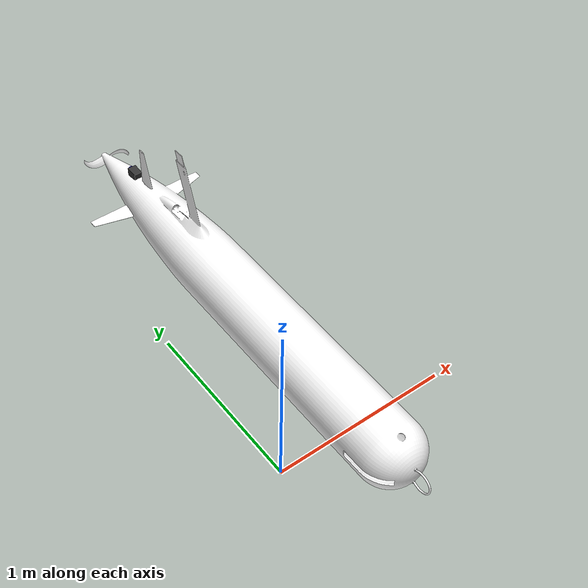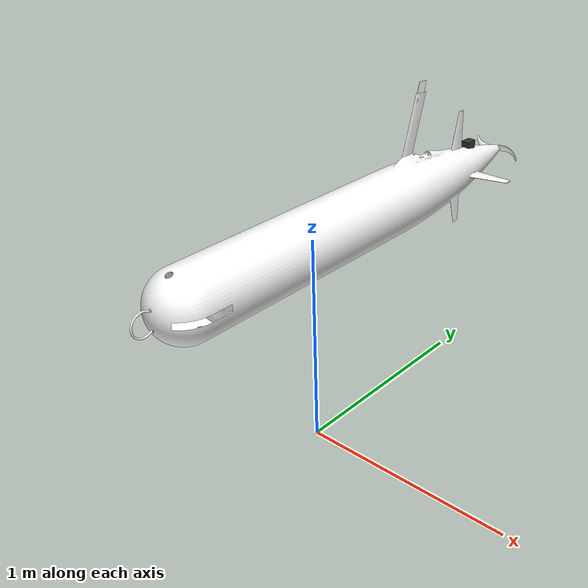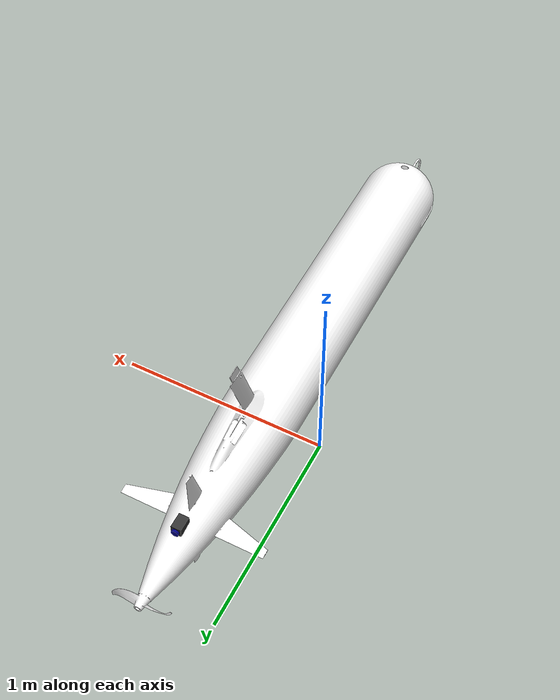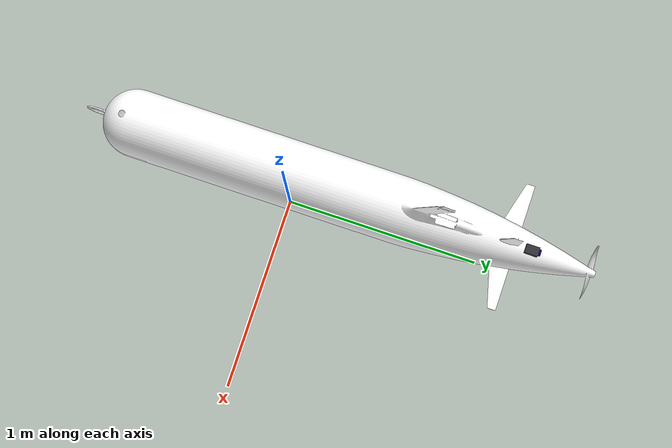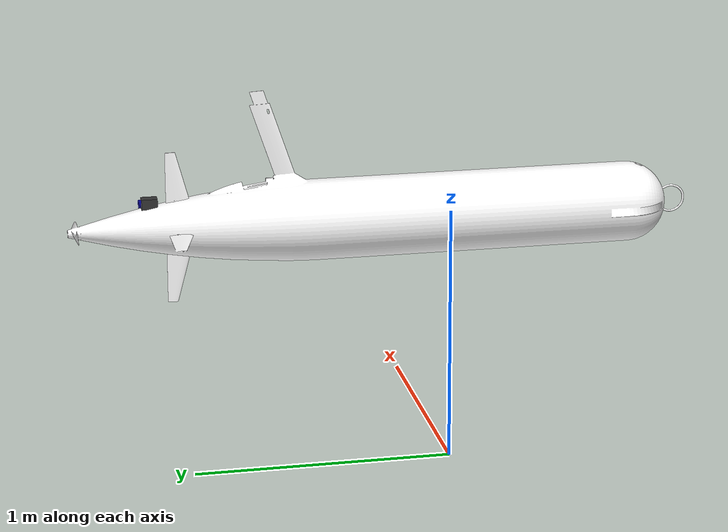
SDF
<sdf version="1.10">
 <world name="submarine_world">
  <scene>
   <ambient>0.2 0.3 0.4 1</ambient>
   <background>0 0.3 0.6 1</background>
   <shadows>true</shadows>
   <grid>false</grid>
   <fog>
    <color>0.0 0.2 0.4 1.0</color>
    <type>linear</type>
    <density>0.05</density>
    <start>1</start>
    <end>80</end>
   </fog>
  </scene>
  <physics name="1ms" type="ode">
   <max_step_size>0.001</max_step_size>
   <real_time_factor>1</real_time_factor>
   <real_time_update_rate>1000</real_time_update_rate>
  </physics>
  <plugin name="gz::sim::systems::Physics" filename="gz-sim-physics-system"/>
  <plugin name="gz::sim::systems::UserCommands" filename="gz-sim-user-commands-system"/>
  <plugin name="gz::sim::systems::SceneBroadcaster" filename="gz-sim-scene-broadcaster-system"/>
  <plugin name="gz::sim::systems::Contact" filename="gz-sim-contact-system"/>
  <plugin name="gz::sim::systems::Sensors" filename="libgz-sim8-sensors-system.so"/>
  <plugin name="gz::sim::systems::Buoyancy" filename="gz-sim-buoyancy-system">
   <uniform_fluid_density>1000</uniform_fluid_density>
  </plugin>
  <gravity>0 0 -9.8000000000000007</gravity>
  <magnetic_field>5.5644999999999998e-06 2.2875799999999999e-05 -4.2388400000000002e-05</magnetic_field>
  <atmosphere type="adiabatic"/>
  <include>
   <uri>model://submarine_model</uri>
   <name>tethys</name>
   <pose>0 0 1 0 0 1.5699999999999998</pose>
  </include>
  <light name="sun" type="directional">
   <pose>0 0 50 0 0 0</pose>
   <intensity>0.6</intensity>
   <direction>-0.5 0.1 -0.9</direction>
   <diffuse>0.6 0.8 0.95 1</diffuse>
   <specular>0.2 0.3 0.4 1</specular>
   <attenuation>
    <range>1000</range>
    <linear>0.03</linear>
    <constant>0.8</constant>
    <quadratic>0.001</quadratic>
   </attenuation>
   <spot><inner_angle>0</inner_angle><outer_angle>0</outer_angle><falloff>0</falloff></spot>
  </light>
 </world>
</sdf>

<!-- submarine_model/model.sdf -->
<sdf version="1.6">
	<model name="tethys">
		<!-- Body -->
		<link name="base_link">
			<inertial>
				<mass>147.8671</mass>
				<inertia>
					<ixx>3.000000</ixx>
					<ixy>0</ixy>
					<ixz>0</ixz>
					<iyy>41.980233</iyy>
					<iyz>0</iyz>
					<izz>41.980233</izz>
				</inertia>
			</inertial>
			<collision name="main_body_buoyancy">
				<geometry>
					<box>
						<size>2 0.3 0.2464451666666667</size>
					</box>
				</geometry>
			</collision>
			<visual name="visual">
				<geometry>
					<mesh>
						<uri>meshes/tethys.dae</uri>
						<submesh>
							<name>Body</name>
							<center>false</center>
						</submesh>
					</mesh>
				</geometry>
				<material>
					<diffuse>1.0 1.0 1.0</diffuse>
					<specular>1.0 1.0 1.0</specular>
					<pbr>
						<metal>
							<albedo_map>materials/textures/Tethys_Albedo.png</albedo_map>
							<normal_map>materials/textures/Tethys_Normal.png</normal_map>
							<metalness_map>materials/textures/Tethys_Metalness.png</metalness_map>
							<roughness_map>materials/textures/Tethys_Roughness.png</roughness_map>
						</metal>
					</pbr>
					<script>
						<uri>materials/scripts/</uri>
						<uri>materials/textures/</uri>
						<name>tethys/Tethys_Diffuse</name>
					</script>
				</material>
			</visual>
			<!-- Camera visual representation -->
			<visual name="camera_visual">
				<pose>1.15 0 0.1 0 0 0</pose>
				<geometry>
					<box>
						<size>0.06 0.04 0.04</size>
					</box>
				</geometry>
				<material>
					<ambient>0.1 0.1 0.1 1</ambient>
					<diffuse>0.2 0.2 0.2 1</diffuse>
					<specular>0.8 0.8 0.8 1</specular>
				</material>
			</visual>
			<!-- Camera lens visual -->
			<visual name="camera_lens_visual">
				<pose>1.18 0 0.1 0 1.5708 0</pose>
				<geometry>
					<cylinder>
						<radius>0.015</radius>
						<length>0.02</length>
					</cylinder>
				</geometry>
				<material>
					<ambient>0.0 0.0 0.2 1</ambient>
					<diffuse>0.0 0.0 0.5 1</diffuse>
					<specular>0.9 0.9 0.9 1</specular>
				</material>
			</visual>
			<!--CAMERA SENSOR-->
			<sensor name="camera_sensor" type="camera">
				<pose>1.15 0 0.15 0 0 0</pose>
				<camera name="forward_camera">
					<horizontal_fov>1.39626</horizontal_fov>
					<image>
						<width>640</width>
						<height>480</height>
						<format>R8G8B8</format>
					</image>
					<clip>
						<near>0.05</near>
						<far>300</far>
					</clip>
					<noise>
						<type>gaussian</type>
						<mean>0.0</mean>
						<stddev>0.007</stddev>
					</noise>
				</camera>
				<always_on>1</always_on>
				<update_rate>120</update_rate>
				<visualize>true</visualize>
				<topic>/camera/image_raw</topic>
			</sensor>
			<!-- IMU SENSOR -->
			<sensor name="imu_sensor" type="imu">
				<always_on>1</always_on>
				<update_rate>100</update_rate>
				<visualize>false</visualize>
				<topic>/imu/data</topic>
				<imu>
					<angular_velocity>
						<x>
							<noise type="gaussian">
								<mean>0.0</mean>
								<stddev>2e-4</stddev>
								<bias_mean>0.0000075</bias_mean>
								<bias_stddev>0.0000008</bias_stddev>
							</noise>
						</x>
						<y>
							<noise type="gaussian">
								<mean>0.0</mean>
								<stddev>2e-4</stddev>
								<bias_mean>0.0000075</bias_mean>
								<bias_stddev>0.0000008</bias_stddev>
							</noise>
						</y>
						<z>
							<noise type="gaussian">
								<mean>0.0</mean>
								<stddev>2e-4</stddev>
								<bias_mean>0.0000075</bias_mean>
								<bias_stddev>0.0000008</bias_stddev>
							</noise>
						</z>
					</angular_velocity>
					<linear_acceleration>
						<x>
							<noise type="gaussian">
								<mean>0.0</mean>
								<stddev>1.7e-2</stddev>
								<bias_mean>0.1</bias_mean>
								<bias_stddev>0.001</bias_stddev>
							</noise>
						</x>
						<y>
							<noise type="gaussian">
								<mean>0.0</mean>
								<stddev>1.7e-2</stddev>
								<bias_mean>0.1</bias_mean>
								<bias_stddev>0.001</bias_stddev>
							</noise>
						</y>
						<z>
							<noise type="gaussian">
								<mean>0.0</mean>
								<stddev>1.7e-2</stddev>
								<bias_mean>0.1</bias_mean>
								<bias_stddev>0.001</bias_stddev>
							</noise>
						</z>
					</linear_acceleration>
				</imu>
				<plugin filename="gz-sim-imu-system" name="gz::sim::systems::Imu">
					<initial_orientation_as_reference>false</initial_orientation_as_reference>
				</plugin>
				<pose>0 0 0 0 0 0</pose>
			</sensor>
		</link>
		<!-- Horizontal fins -->
		<link name="horizontal_fins">
			<pose>1.05 0 0 0 0 0</pose>
			<inertial>
				<pose>0 0 0 1.57 0 0.5</pose>
				<mass>0.2</mass>
				<inertia>
					<ixx>0.0007924568755</ixx>
					<ixy>-0.0000000002674</ixy>
					<ixz>0.0003978158176</ixz>
					<iyy>0.0010546736475</iyy>
					<iyz>-0.0000000006729</iyz>
					<izz>0.0002633558262</izz>
				</inertia>
			</inertial>
			<collision name="collision">
				<geometry>
					<box>
						<size>0.1 0.1 0.02</size>
					</box>
				</geometry>
			</collision>
			<visual name="visual">
				<pose>-1.05 0 0 0 0 0</pose>
				<geometry>
					<mesh>
						<uri>meshes/tethys.dae</uri>
						<submesh>
							<name>Fins_Horizontal</name>
							<center>false</center>
						</submesh>
					</mesh>
				</geometry>
				<material>
					<diffuse>1.0 1.0 1.0</diffuse>
					<specular>1.0 1.0 1.0</specular>
					<pbr>
						<metal>
							<albedo_map>materials/textures/Tethys_Albedo.png</albedo_map>
							<normal_map>materials/textures/Tethys_Normal.png</normal_map>
							<metalness_map>materials/textures/Tethys_Metalness.png</metalness_map>
							<roughness_map>materials/textures/Tethys_Roughness.png</roughness_map>
						</metal>
					</pbr>
					<script>
						<uri>materials/scripts/</uri>
						<uri>materials/textures/</uri>
						<name>tethys/Tethys_Diffuse</name>
					</script>
				</material>
			</visual>
		</link>
		<!-- Vertical fins -->
		<link name="vertical_fins">
			<pose>1.05 0 0 0 0 0</pose>
			<inertial>
				<mass>0.2</mass>
				<inertia>
					<ixx>0.0007924568755</ixx>
					<ixy>-0.0000000002674</ixy>
					<ixz>0.0003978158176</ixz>
					<iyy>0.0010546736475</iyy>
					<iyz>-0.0000000006729</iyz>
					<izz>0.0002633558262</izz>
				</inertia>
			</inertial>
			<collision name="collision">
				<geometry>
					<box>
						<size>0.1 0.1 0.02</size>
					</box>
				</geometry>
			</collision>
			<visual name="visual">
				<pose>-1.05 0 0 0 0 0</pose>
				<geometry>
					<mesh>
						<uri>meshes/tethys.dae</uri>
						<submesh>
							<name>Fins_vertical</name>
							<center>false</center>
						</submesh>
					</mesh>
				</geometry>
				<material>
					<diffuse>1.0 1.0 1.0</diffuse>
					<specular>1.0 1.0 1.0</specular>
					<pbr>
						<metal>
							<albedo_map>materials/textures/Tethys_Albedo.png</albedo_map>
							<normal_map>materials/textures/Tethys_Normal.png</normal_map>
							<metalness_map>materials/textures/Tethys_Metalness.png</metalness_map>
							<roughness_map>materials/textures/Tethys_Roughness.png</roughness_map>
						</metal>
					</pbr>
					<script>
						<uri>materials/scripts/</uri>
						<uri>materials/textures/</uri>
						<name>tethys/Tethys_Diffuse</name>
					</script>
				</material>
			</visual>
		</link>
		<!-- Propeller -->
		<link name="propeller">
			<pose>1.43162 0 0 0 0 0</pose>
			<inertial>
				<pose>0 0 0 0 0 0</pose>
				<mass>0.09</mass>
				<inertia>
					<ixx>0.000143971303</ixx>
					<ixy>0.000000000008</ixy>
					<ixz>-0.000000000224</ixz>
					<iyy>0.000140915448</iyy>
					<iyz>-0.000025236433</iyz>
					<izz>0.000033571862</izz>
				</inertia>
			</inertial>
			<collision name="collision">
				<geometry>
					<box>
						<size>0.03 0.1 0.03</size>
					</box>
				</geometry>
			</collision>
			<visual name="visual">
				<pose>-1.43162 0 0 0 0 0</pose>
				<geometry>
					<mesh>
						<uri>meshes/tethys.dae</uri>
						<submesh>
							<name>Prop</name>
							<center>false</center>
						</submesh>
					</mesh>
				</geometry>
				<material>
					<diffuse>1.0 1.0 1.0</diffuse>
					<specular>1.0 1.0 1.0</specular>
					<pbr>
						<metal>
							<albedo_map>materials/textures/Tethys_Albedo.png</albedo_map>
							<normal_map>materials/textures/Tethys_Normal.png</normal_map>
							<metalness_map>materials/textures/Tethys_Metalness.png</metalness_map>
							<roughness_map>materials/textures/Tethys_Roughness.png</roughness_map>
						</metal>
					</pbr>
					<script>
						<uri>materials/scripts/</uri>
						<uri>materials/textures/</uri>
						<name>tethys/Tethys_Diffuse</name>
					</script>
				</material>
			</visual>
		</link>
		<!-- Joints -->
		<joint name="horizontal_fins_joint" type="revolute">
			<pose>0 0 0 0 0 0</pose>
			<parent>base_link</parent>
			<child>horizontal_fins</child>
			<axis>
				<xyz>0 1 0</xyz>
				<limit>
					<lower>-0.261799</lower>
					<upper>0.261799</upper>
					<effort>-1</effort>
					<velocity>-1</velocity>
				</limit>
			</axis>
		</joint>
		<joint name="vertical_fins_joint" type="revolute">
			<pose>0 0 0 0 0 0</pose>
			<parent>base_link</parent>
			<child>vertical_fins</child>
			<axis>
				<xyz>0 0 1</xyz>
				<limit>
					<lower>-0.261799</lower>
					<upper>0.261799</upper>
					<effort>-1</effort>
					<velocity>-1</velocity>
				</limit>
			</axis>
		</joint>
		<joint name="propeller_joint" type="revolute">
			<pose>0 0 0 0 0 0</pose>
			<parent>base_link</parent>
			<child>propeller</child>
			<axis>
				<xyz>1 0 0</xyz>
				<limit>
					<lower>-1e+12</lower>
					<upper>1e+12</upper>
					<effort>-1</effort>
					<velocity>-1</velocity>
				</limit>
			</axis>
		</joint>
		<!-- Thruster plugin -->
		<plugin filename="gz-sim-thruster-system" name="gz::sim::systems::Thruster">
			<namespace>tethys</namespace>
			<use_angvel_cmd>0</use_angvel_cmd>
			<joint_name>propeller_joint</joint_name>
			<thrust_coefficient>0.004422</thrust_coefficient>
			<fluid_density>1000</fluid_density>
			<propeller_diameter>0.2</propeller_diameter>
		</plugin>
		<!-- Hydrodynamics plugin -->
		<plugin filename="gz-sim-hydrodynamics-system" name="gz::sim::systems::Hydrodynamics">
			<link_name>base_link</link_name>
			<xDotU>-4.876161</xDotU>
			<yDotV>-126.324739</yDotV>
			<zDotW>-126.324739</zDotW>
			<kDotP>0</kDotP>
			<mDotQ>-33.46</mDotQ>
			<nDotR>-33.46</nDotR>
			<xUabsU>-6.2282</xUabsU>
			<xU>0</xU>
			<yVabsV>-601.27</yVabsV>
			<yV>0</yV>
			<zWabsW>-601.27</zWabsW>
			<zW>0</zW>
			<kPabsP>-0.1916</kPabsP>
			<kP>0</kP>
			<mQabsQ>-632.698957</mQabsQ>
			<mQ>0</mQ>
			<nRabsR>-632.698957</nRabsR>
			<nR>0</nR>
		</plugin>
		<!-- Vertical fin lift-drag -->
		<plugin filename="gz-sim-lift-drag-system" name="gz::sim::systems::LiftDrag">
			<air_density>1000</air_density>
			<cla>4.13</cla>
			<cla_stall>-1.1</cla_stall>
			<cda>0.2</cda>
			<cda_stall>0.03</cda_stall>
			<alpha_stall>0.17</alpha_stall>
			<a0>0</a0>
			<area>0.0244</area>
			<upward>0 1 0</upward>
			<forward>-1 0 0</forward>
			<link_name>vertical_fins</link_name>
			<cp>0 0 0</cp>
		</plugin>
		<!-- Horizontal fin lift-drag -->
		<plugin filename="gz-sim-lift-drag-system" name="gz::sim::systems::LiftDrag">
			<air_density>1000</air_density>
			<cla>4.13</cla>
			<cla_stall>-1.1</cla_stall>
			<cda>0.2</cda>
			<cda_stall>0.03</cda_stall>
			<alpha_stall>0.17</alpha_stall>
			<a0>0</a0>
			<area>0.0244</area>
			<upward>0 0 1</upward>
			<forward>1 0 0</forward>
			<link_name>horizontal_fins</link_name>
			<cp>0 0 0</cp>
		</plugin>
		<!-- Joint position controllers for fins -->
		<plugin filename="gz-sim-joint-position-controller-system" name="gz::sim::systems::JointPositionController">
			<joint_name>horizontal_fins_joint</joint_name>
			<topic>/model/tethys/joint/horizontal_fins_joint/cmd_pos</topic>
			<p_gain>50.0</p_gain>
		</plugin>
		<plugin filename="gz-sim-joint-position-controller-system" name="gz::sim::systems::JointPositionController">
			<joint_name>vertical_fins_joint</joint_name>
			<topic>/model/tethys/joint/vertical_fins_joint/cmd_pos</topic>
			<p_gain>50.0</p_gain>
		</plugin>
	</model>
</sdf>
